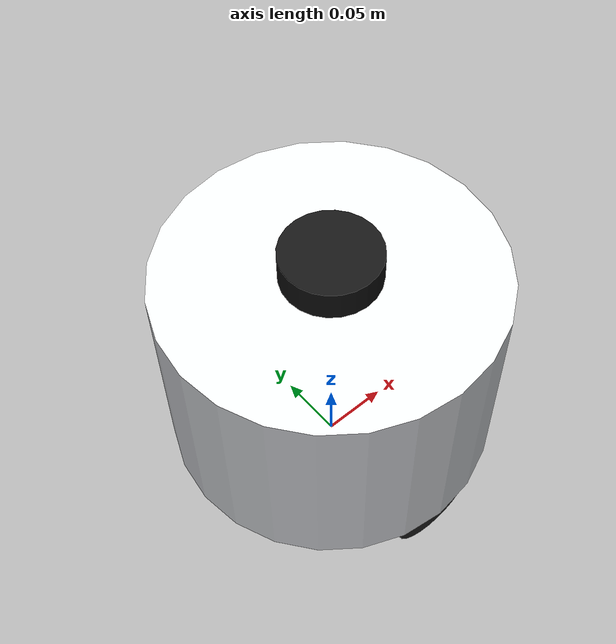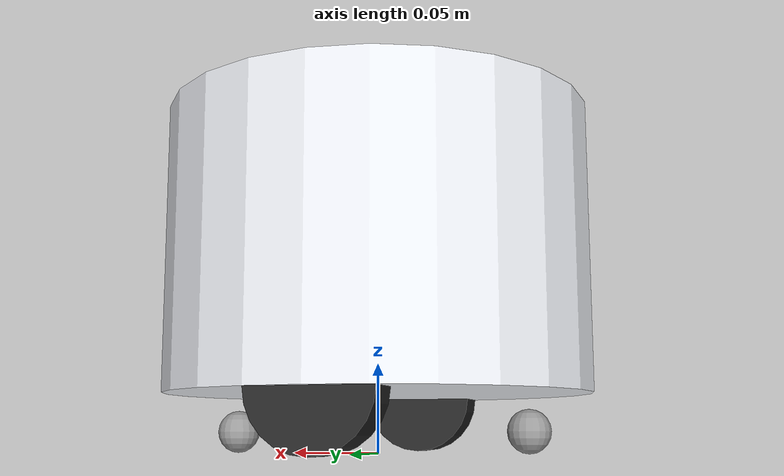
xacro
<?xml version="1.0"?>
<robot name="mio" xmlns:xacro="http://www.ros.org/wiki/xacro">

  <!-- Common Materials & Inertia Macros -->
  <xacro:include filename="common_properties.xacro"/>

  <!-- Core Differential Drive Chassis -->
  <xacro:include filename="mio_core.xacro"/>

  <!-- 2D LiDAR Sensor -->
  <xacro:include filename="sensors/lidar.xacro"/>

  <!-- IMU Sensor -->
  <xacro:include filename="sensors/imu.xacro"/>

  <!-- Gazebo Jetty (gz-sim 10) Physics & Plugins -->
  <xacro:include filename="mio_gazebo.xacro"/>

</robot>

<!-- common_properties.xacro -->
<robot xmlns:xacro="http://www.ros.org/wiki/xacro">

  <!-- Colors & Materials                         -->
  <material name="chassis_white">
    <color rgba="0.92 0.93 0.95 1.0"/>
  </material>

  <material name="accent_teal">
    <color rgba="0.0 0.70 0.65 1.0"/>
  </material>

  <material name="rubber_dark">
    <color rgba="0.15 0.15 0.15 1.0"/>
  </material>

  <material name="sensor_black">
    <color rgba="0.08 0.08 0.08 1.0"/>
  </material>

  <material name="caster_metal">
    <color rgba="0.6 0.6 0.6 1.0"/>
  </material>

  <!-- Inertial Calculation Macros               -->

  <!-- Solid Box Inertia: mass * (h^2 + d^2) / 12 -->
  <xacro:macro name="box_inertia" params="m w d h">
    <inertial>
      <mass value="${m}"/>
      <inertia ixx="${(m/12.0) * (h*h + d*d)}" ixy="0.0" ixz="0.0"
               iyy="${(m/12.0) * (w*w + h*h)}" iyz="0.0"
               izz="${(m/12.0) * (w*w + d*d)}"/>
    </inertial>
  </xacro:macro>

  <!-- Solid Cylinder Inertia (along Z axis) -->
  <xacro:macro name="cylinder_inertia" params="m r h">
    <inertial>
      <mass value="${m}"/>
      <inertia ixx="${(m/12.0) * (3*r*r + h*h)}" ixy="0.0" ixz="0.0"
               iyy="${(m/12.0) * (3*r*r + h*h)}" iyz="0.0"
               izz="${(m/2.0) * (r*r)}"/>
    </inertial>
  </xacro:macro>

  <!-- Solid Sphere Inertia: 2/5 * m * r^2 -->
  <xacro:macro name="sphere_inertia" params="m r">
    <inertial>
      <mass value="${m}"/>
      <inertia ixx="${(2.0/5.0) * m * r*r}" ixy="0.0" ixz="0.0"
               iyy="${(2.0/5.0) * m * r*r}" iyz="0.0"
               izz="${(2.0/5.0) * m * r*r}"/>
    </inertial>
  </xacro:macro>

</robot>

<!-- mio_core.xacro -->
<robot xmlns:xacro="http://www.ros.org/wiki/xacro">

  <!-- Dimensions & Physical Parameters           -->
  <xacro:property name="chassis_radius" value="0.12"/>
  <xacro:property name="chassis_height" value="0.16"/>
  <xacro:property name="chassis_mass" value="3.0"/>

  <xacro:property name="wheel_radius" value="0.033"/>
  <xacro:property name="wheel_width" value="0.024"/>
  <xacro:property name="wheel_mass" value="0.15"/>
  <xacro:property name="wheel_separation" value="0.20"/>

  <xacro:property name="caster_radius" value="0.012"/>
  <xacro:property name="caster_mass" value="0.05"/>
  <xacro:property name="caster_offset_x" value="0.085"/>

  <!-- Base Footprint (Ground plane projection)    -->
  <link name="base_footprint"/>

  <joint name="base_footprint_joint" type="fixed">
    <parent link="base_footprint"/>
    <child link="base_link"/>
    <!-- Position base_link above ground by wheel_radius -->
    <origin xyz="0 0 ${wheel_radius}" rpy="0 0 0"/>
  </joint>

  <!-- Base Link (Chassis Body Origin)           -->
  <link name="base_link">
    <visual>
      <origin xyz="0 0 ${chassis_height / 2.0}" rpy="0 0 0"/>
      <geometry>
        <cylinder radius="${chassis_radius}" length="${chassis_height}"/>
      </geometry>
      <material name="chassis_white"/>
    </visual>
    <collision>
      <origin xyz="0 0 ${chassis_height / 2.0}" rpy="0 0 0"/>
      <geometry>
        <cylinder radius="${chassis_radius}" length="${chassis_height}"/>
      </geometry>
    </collision>
    <!-- Center of mass slightly low for stability -->
    <inertial>
      <origin xyz="0 0 ${chassis_height / 3.0}" rpy="0 0 0"/>
      <mass value="${chassis_mass}"/>
      <inertia ixx="${(chassis_mass/12.0) * (3*chassis_radius*chassis_radius + chassis_height*chassis_height)}" ixy="0.0" ixz="0.0"
               iyy="${(chassis_mass/12.0) * (3*chassis_radius*chassis_radius + chassis_height*chassis_height)}" iyz="0.0"
               izz="${(chassis_mass/2.0) * (chassis_radius*chassis_radius)}"/>
    </inertial>
  </link>

  <!-- Drive Wheel Macro                          -->
  <xacro:macro name="drive_wheel" params="prefix y_offset">
    <link name="${prefix}_wheel_link">
      <visual>
        <origin xyz="0 0 0" rpy="${pi/2} 0 0"/>
        <geometry>
          <cylinder radius="${wheel_radius}" length="${wheel_width}"/>
        </geometry>
        <material name="rubber_dark"/>
      </visual>
      <collision>
        <origin xyz="0 0 0" rpy="${pi/2} 0 0"/>
        <geometry>
          <cylinder radius="${wheel_radius}" length="${wheel_width}"/>
        </geometry>
      </collision>
      <inertial>
        <origin xyz="0 0 0" rpy="${pi/2} 0 0"/>
        <mass value="${wheel_mass}"/>
        <inertia ixx="${(wheel_mass/12.0) * (3*wheel_radius*wheel_radius + wheel_width*wheel_width)}" ixy="0.0" ixz="0.0"
                 iyy="${(wheel_mass/12.0) * (3*wheel_radius*wheel_radius + wheel_width*wheel_width)}" iyz="0.0"
                 izz="${(wheel_mass/2.0) * (wheel_radius*wheel_radius)}"/>
      </inertial>
    </link>

    <joint name="${prefix}_wheel_joint" type="continuous">
      <parent link="base_link"/>
      <child link="${prefix}_wheel_link"/>
      <origin xyz="0 ${y_offset} 0" rpy="0 0 0"/>
      <axis xyz="0 1 0"/>
    </joint>
  </xacro:macro>

  <!-- Left and Right Drive Wheels -->
  <xacro:drive_wheel prefix="left" y_offset="${wheel_separation / 2.0}"/>
  <xacro:drive_wheel prefix="right" y_offset="${-wheel_separation / 2.0}"/>

  <!-- Caster Wheel Macro (Passive Spheres)       -->
  <xacro:macro name="caster_wheel" params="prefix x_offset">
    <link name="${prefix}_caster_link">
      <visual>
        <origin xyz="0 0 0" rpy="0 0 0"/>
        <geometry>
          <sphere radius="${caster_radius}"/>
        </geometry>
        <material name="caster_metal"/>
      </visual>
      <collision>
        <origin xyz="0 0 0" rpy="0 0 0"/>
        <geometry>
          <sphere radius="${caster_radius}"/>
        </geometry>
      </collision>
      <inertial>
        <mass value="${caster_mass}"/>
        <inertia ixx="${(2.0/5.0) * caster_mass * caster_radius * caster_radius}" ixy="0.0" ixz="0.0"
                 iyy="${(2.0/5.0) * caster_mass * caster_radius * caster_radius}" iyz="0.0"
                 izz="${(2.0/5.0) * caster_mass * caster_radius * caster_radius}"/>
      </inertial>
    </link>

    <joint name="${prefix}_caster_joint" type="fixed">
      <parent link="base_link"/>
      <child link="${prefix}_caster_link"/>
      <!-- Place caster bottom touching ground: z = -(wheel_radius - caster_radius) -->
      <origin xyz="${x_offset} 0 ${-(wheel_radius - caster_radius)}" rpy="0 0 0"/>
    </joint>
  </xacro:macro>

  <!-- Front and Rear Casters -->
  <xacro:caster_wheel prefix="front" x_offset="${caster_offset_x}"/>
  <xacro:caster_wheel prefix="rear" x_offset="${-caster_offset_x}"/>

</robot>

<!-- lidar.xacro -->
<robot xmlns:xacro="http://www.ros.org/wiki/xacro">

  <!-- 2D LiDAR Scanner (RPLiDAR / LD19)         -->
  <xacro:property name="lidar_radius" value="0.035"/>
  <xacro:property name="lidar_height" value="0.025"/>
  <xacro:property name="lidar_mass" value="0.12"/>
  <xacro:property name="lidar_offset_z" value="0.17"/>

  <link name="laser_frame">
    <visual>
      <origin xyz="0 0 0" rpy="0 0 0"/>
      <geometry>
        <cylinder radius="${lidar_radius}" length="${lidar_height}"/>
      </geometry>
      <material name="sensor_black"/>
    </visual>
    <collision>
      <origin xyz="0 0 0" rpy="0 0 0"/>
      <geometry>
        <cylinder radius="${lidar_radius}" length="${lidar_height}"/>
      </geometry>
    </collision>
    <inertial>
      <mass value="${lidar_mass}"/>
      <inertia ixx="${(lidar_mass/12.0) * (3*lidar_radius*lidar_radius + lidar_height*lidar_height)}" ixy="0.0" ixz="0.0"
               iyy="${(lidar_mass/12.0) * (3*lidar_radius*lidar_radius + lidar_height*lidar_height)}" iyz="0.0"
               izz="${(lidar_mass/2.0) * (lidar_radius*lidar_radius)}"/>
    </inertial>
  </link>

  <joint name="laser_joint" type="fixed">
    <parent link="base_link"/>
    <child link="laser_frame"/>
    <origin xyz="0 0 ${lidar_offset_z}" rpy="0 0 0"/>
  </joint>

  <!-- Gazebo Jetty (gz-sim 10) Sensor Plugin for LiDAR -->
  <gazebo reference="laser_frame">
    <sensor name="lidar" type="gpu_lidar">
      <gz_frame_id>laser_frame</gz_frame_id>
      <pose>0 0 0 0 0 0</pose>
      <topic>/model/mio/scan</topic>
      <update_rate>10</update_rate>
      <ray>
        <scan>
          <horizontal>
            <samples>360</samples>
            <resolution>1</resolution>
            <min_angle>-3.14159265</min_angle>
            <max_angle>3.14159265</max_angle>
          </horizontal>
        </scan>
        <range>
          <min>0.12</min>
          <max>12.0</max>
          <resolution>0.01</resolution>
        </range>
        <noise>
          <type>gaussian</type>
          <mean>0.0</mean>
          <stddev>0.01</stddev>
        </noise>
      </ray>
      <always_on>1</always_on>
      <visualize>true</visualize>
    </sensor>
  </gazebo>

</robot>

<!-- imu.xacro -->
<robot xmlns:xacro="http://www.ros.org/wiki/xacro">

  <!-- 6-DOF IMU Sensor (MPU6050 / BNO055)        -->
  <link name="imu_frame">
    <inertial>
      <mass value="0.01"/>
      <inertia ixx="0.000001" ixy="0.0" ixz="0.0"
               iyy="0.000001" iyz="0.0"
               izz="0.000001"/>
    </inertial>
  </link>

  <joint name="imu_joint" type="fixed">
    <parent link="base_link"/>
    <child link="imu_frame"/>
    <origin xyz="0 0 0.05" rpy="0 0 0"/>
  </joint>

  <!-- Gazebo Jetty (gz-sim 10) Sensor Plugin for IMU -->
  <gazebo reference="imu_frame">
    <sensor name="imu_sensor" type="imu">
      <gz_frame_id>imu_frame</gz_frame_id>
      <always_on>1</always_on>
      <update_rate>50</update_rate>
      <visualize>true</visualize>
      <topic>/model/mio/imu</topic>
      <imu>
        <angular_velocity>
          <x>
            <noise type="gaussian">
              <mean>0.0</mean>
              <stddev>2e-4</stddev>
            </noise>
          </x>
          <y>
            <noise type="gaussian">
              <mean>0.0</mean>
              <stddev>2e-4</stddev>
            </noise>
          </y>
          <z>
            <noise type="gaussian">
              <mean>0.0</mean>
              <stddev>2e-4</stddev>
            </noise>
          </z>
        </angular_velocity>
        <linear_acceleration>
          <x>
            <noise type="gaussian">
              <mean>0.0</mean>
              <stddev>1.7e-2</stddev>
            </noise>
          </x>
          <y>
            <noise type="gaussian">
              <mean>0.0</mean>
              <stddev>1.7e-2</stddev>
            </noise>
          </y>
          <z>
            <noise type="gaussian">
              <mean>0.0</mean>
              <stddev>1.7e-2</stddev>
            </noise>
          </z>
        </linear_acceleration>
      </imu>
    </sensor>
  </gazebo>

</robot>
